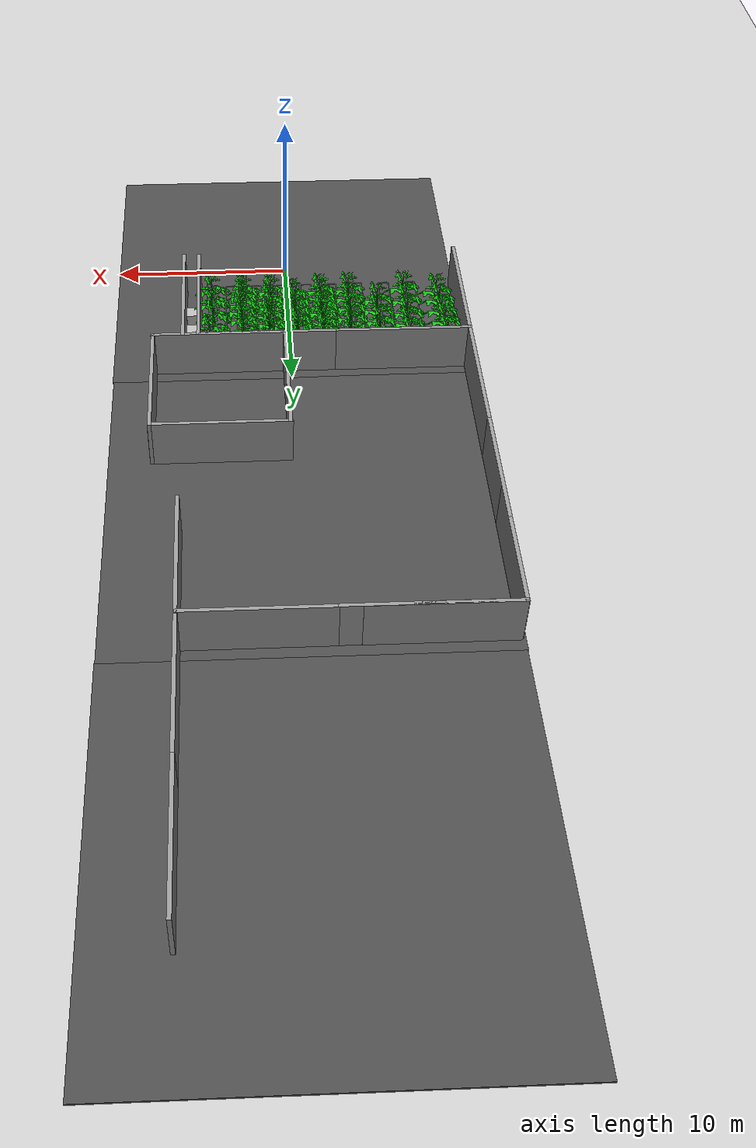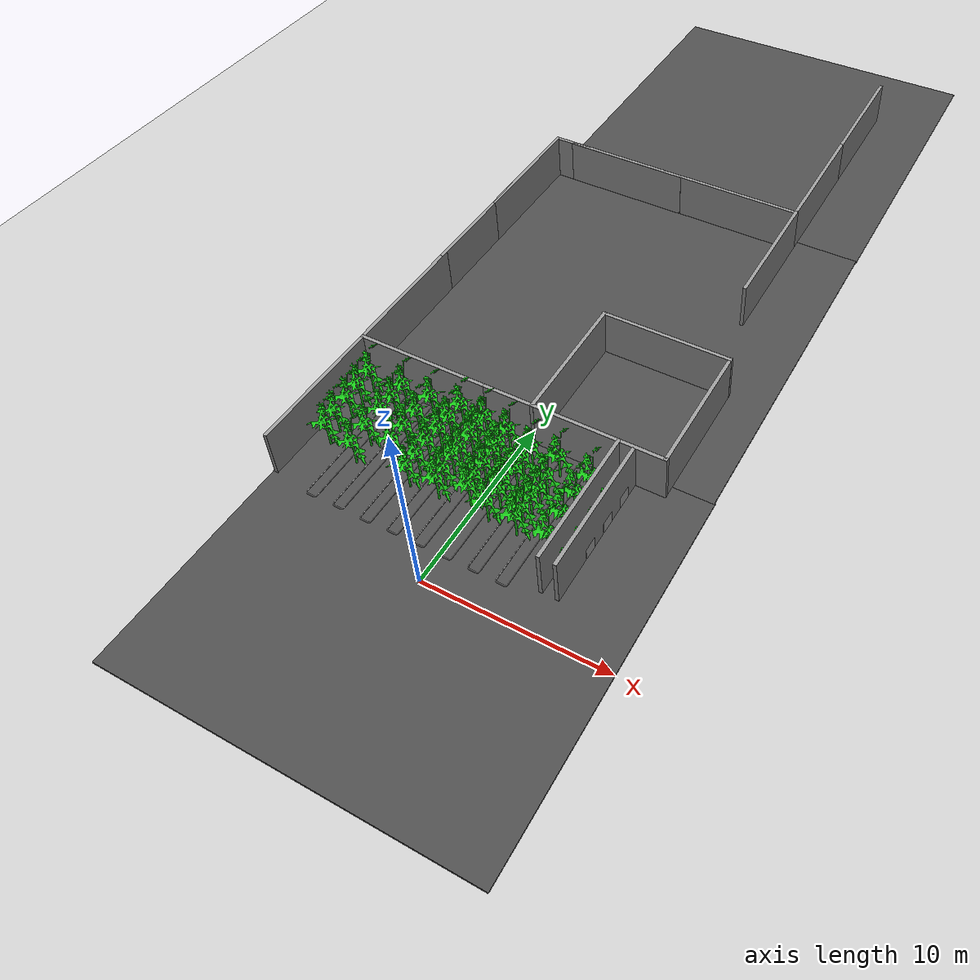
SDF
<sdf version="1.7">
 <world name="default">
  <model name="ground_plane">
   <static>1</static>
   <link name="link">
    <collision name="collision">
     <geometry><plane><normal>0 0 1</normal><size>100 100</size></plane></geometry>
     <surface><friction><ode><mu>100</mu><mu2>50</mu2></ode></friction></surface>
    </collision>
    <visual name="visual">
     <cast_shadows>0</cast_shadows>
     <geometry><plane><normal>0 0 1</normal><size>100 100</size></plane></geometry>
     <material>
      <script><uri>file://media/materials/scripts/gazebo.material</uri><name>Gazebo/Grey</name></script>
     </material>
    </visual>
   </link>
  </model>
  <model name="piperail_clone">
   <static>1</static>
   <link name="link">
    <collision name="collision">
     <geometry>
      <mesh><scale>0.001 0.001 0.001</scale><uri>model://piperail/meshes/piperail.STL</uri></mesh>
     </geometry>
    </collision>
    <visual name="visual">
     <geometry>
      <mesh><scale>0.001 0.001 0.001</scale><uri>model://piperail/meshes/piperail.STL</uri></mesh>
     </geometry>
    </visual>
   </link>
   <pose>-0.016211 9 0.05 1.57 -0 0</pose>
  </model>
  <model name="piperail_clone_4">
   <static>1</static>
   <link name="link">
    <collision name="collision">
     <geometry>
      <mesh><scale>0.001 0.001 0.001</scale><uri>model://piperail/meshes/piperail.STL</uri></mesh>
     </geometry>
    </collision>
    <visual name="visual">
     <geometry>
      <mesh><scale>0.001 0.001 0.001</scale><uri>model://piperail/meshes/piperail.STL</uri></mesh>
     </geometry>
    </visual>
   </link>
   <pose>-1.5 9 0.05 1.57 -0 0</pose>
  </model>
  <model name="piperail_clone_5">
   <static>1</static>
   <link name="link">
    <collision name="collision">
     <geometry>
      <mesh><scale>0.001 0.001 0.001</scale><uri>model://piperail/meshes/piperail.STL</uri></mesh>
     </geometry>
    </collision>
    <visual name="visual">
     <geometry>
      <mesh><scale>0.001 0.001 0.001</scale><uri>model://piperail/meshes/piperail.STL</uri></mesh>
     </geometry>
    </visual>
   </link>
   <pose>-3 9 0.05 1.57 -0 0</pose>
  </model>
  <model name="piperail_clone_6">
   <static>1</static>
   <link name="link">
    <collision name="collision">
     <geometry>
      <mesh><scale>0.001 0.001 0.001</scale><uri>model://piperail/meshes/piperail.STL</uri></mesh>
     </geometry>
    </collision>
    <visual name="visual">
     <geometry>
      <mesh><scale>0.001 0.001 0.001</scale><uri>model://piperail/meshes/piperail.STL</uri></mesh>
     </geometry>
    </visual>
   </link>
   <pose>1.5 9 0.05 1.57 -0 0</pose>
  </model>
  <model name="piperail_clone_7">
   <static>1</static>
   <link name="link">
    <collision name="collision">
     <geometry>
      <mesh><scale>0.001 0.001 0.001</scale><uri>model://piperail/meshes/piperail.STL</uri></mesh>
     </geometry>
    </collision>
    <visual name="visual">
     <geometry>
      <mesh><scale>0.001 0.001 0.001</scale><uri>model://piperail/meshes/piperail.STL</uri></mesh>
     </geometry>
    </visual>
   </link>
   <pose>3 9 0.05 1.57 -0 0</pose>
  </model>
  <model name="plant_clone_1_clone_5">
   <static>1</static>
   <link name="link">
    <visual name="visual">
     <geometry><mesh><scale>0.01 0.01 0.01</scale><uri>model://plant/meshes/plant.STL</uri></mesh></geometry>
     <material>
      <ambient>0.1 0.8 0.1 1</ambient>
      <diffuse>0.1 0.8 0.1 1</diffuse>
      <specular>0.01 0.01 0.01 1</specular>
      <emissive>0 0 0 1</emissive>
     </material>
    </visual>
   </link>
   <pose>-2.86965 5.0816 0.000845 1.57 -0 0</pose>
  </model>
  <model name="plant_clone_1_clone_8">
   <static>1</static>
   <link name="link">
    <visual name="visual">
     <geometry><mesh><scale>0.01 0.01 0.01</scale><uri>model://plant/meshes/plant.STL</uri></mesh></geometry>
     <material>
      <ambient>0.1 0.8 0.1 1</ambient>
      <diffuse>0.1 0.8 0.1 1</diffuse>
      <specular>0.01 0.01 0.01 1</specular>
      <emissive>0 0 0 1</emissive>
     </material>
    </visual>
   </link>
   <pose>1.55643 4.99352 0.000845 1.57 -0 0</pose>
  </model>
  <model name="plant_clone_1_clone_21">
   <static>1</static>
   <link name="link">
    <visual name="visual">
     <geometry><mesh><scale>0.01 0.01 0.01</scale><uri>model://plant/meshes/plant.STL</uri></mesh></geometry>
     <material>
      <ambient>0.1 0.8 0.1 1</ambient>
      <diffuse>0.1 0.8 0.1 1</diffuse>
      <specular>0.01 0.01 0.01 1</specular>
      <emissive>0 0 0 1</emissive>
     </material>
    </visual>
   </link>
   <pose>3.36217 4.88797 0.000845 1.57 -0 0</pose>
  </model>
  <model name="grey_wall_clone">
   <static>1</static>
   <link name="link">
    <pose>0 0 1.4 0 -0 0</pose>
    <collision name="collision"><geometry><box><size>7.5 0.2 2.8</size></box></geometry></collision>
    <visual name="visual">
     <cast_shadows>0</cast_shadows>
     <geometry><box><size>7.5 0.2 2.8</size></box></geometry>
     <material>
      <script>
       <uri>model://grey_wall/materials/scripts</uri>
       <uri>model://grey_wall/materials/textures</uri>
       <name>vrc/grey_wall</name>
      </script>
     </material>
    </visual>
   </link>
   <pose>6 5.75 0 0 -0 1.57</pose>
  </model>
  <model name="number1">
   <pose>5.71 8.13 0.4 0 -0 0</pose>
   <static>1</static>
   <link name="link">
    <visual name="visual">
     <geometry><mesh><uri>model://number1/meshes/number.dae</uri></mesh></geometry>
     <material>
      <script>
       <uri>model://number1/materials/scripts</uri>
       <uri>model://number1/materials/textures</uri>
       <name>Number/One</name>
      </script>
     </material>
    </visual>
   </link>
  </model>
  <model name="number2">
   <pose>5.71 6.5 0.4 0 -0 0</pose>
   <static>1</static>
   <link name="link">
    <visual name="visual">
     <geometry><mesh><uri>model://number1/meshes/number.dae</uri></mesh></geometry>
     <material>
      <script>
       <uri>model://number2/materials/scripts</uri>
       <uri>model://number2/materials/textures</uri>
       <name>Number/Two</name>
      </script>
     </material>
    </visual>
   </link>
  </model>
  <model name="number3">
   <pose>5.71 4.87 0.4 0 -0 0</pose>
   <static>1</static>
   <link name="link">
    <visual name="visual">
     <geometry><mesh><uri>model://number1/meshes/number.dae</uri></mesh></geometry>
     <material>
      <script>
       <uri>model://number3/materials/scripts</uri>
       <uri>model://number3/materials/textures</uri>
       <name>Number/Three</name>
      </script>
     </material>
    </visual>
   </link>
  </model>
  <model name="grey_wall_clone_clone_2">
   <static>1</static>
   <link name="link">
    <pose>0 0 1.4 0 -0 0</pose>
    <collision name="collision"><geometry><box><size>7.5 0.2 2.8</size></box></geometry></collision>
    <visual name="visual">
     <cast_shadows>0</cast_shadows>
     <geometry><box><size>7.5 0.2 2.8</size></box></geometry>
     <material>
      <script>
       <uri>model://grey_wall/materials/scripts</uri>
       <uri>model://grey_wall/materials/textures</uri>
       <name>vrc/grey_wall</name>
      </script>
     </material>
    </visual>
   </link>
   <pose>5.14176 5.75828 0 0 -0 1.57</pose>
  </model>
  <model name="asphalt_plane">
   <static>1</static>
   <link name="link">
    <collision name="collision"><geometry><box><size>20 20 0.1</size></box></geometry></collision>
    <visual name="visual">
     <cast_shadows>0</cast_shadows>
     <geometry><box><size>20 20 0.1</size></box></geometry>
     <material>
      <script>
       <uri>model://asphalt_plane/materials/scripts</uri>
       <uri>model://asphalt_plane/materials/textures</uri>
       <name>vrc/asphalt</name>
      </script>
     </material>
    </visual>
   </link>
   <pose>0.007662 0.157905 0 0 -0 0</pose>
  </model>
  <model name="asphalt_plane_clone">
   <static>1</static>
   <link name="link">
    <collision name="collision"><geometry><box><size>20 20 0.1</size></box></geometry></collision>
    <visual name="visual">
     <cast_shadows>0</cast_shadows>
     <geometry><box><size>20 20 0.1</size></box></geometry>
     <material>
      <script>
       <uri>model://asphalt_plane/materials/scripts</uri>
       <uri>model://asphalt_plane/materials/textures</uri>
       <name>vrc/asphalt</name>
      </script>
     </material>
    </visual>
   </link>
   <pose>-0.039502 20.0509 0 0 -0 0</pose>
  </model>
  <model name="plant_clone_0_clone_16">
   <static>1</static>
   <link name="link">
    <visual name="visual">
     <geometry><mesh><scale>0.01 0.01 0.01</scale><uri>model://plant/meshes/plant.STL</uri></mesh></geometry>
     <material>
      <ambient>0.1 0.8 0.1 1</ambient>
      <diffuse>0.1 0.8 0.1 1</diffuse>
      <specular>0.01 0.01 0.01 1</specular>
      <emissive>0 0 0 1</emissive>
     </material>
    </visual>
   </link>
   <pose>3.36601 6.18706 0.004669 1.57 -0 0</pose>
  </model>
  <model name="plant_clone_0_clone_17">
   <static>1</static>
   <link name="link">
    <visual name="visual">
     <geometry><mesh><scale>0.01 0.01 0.01</scale><uri>model://plant/meshes/plant.STL</uri></mesh></geometry>
     <material>
      <ambient>0.1 0.8 0.1 1</ambient>
      <diffuse>0.1 0.8 0.1 1</diffuse>
      <specular>0.01 0.01 0.01 1</specular>
      <emissive>0 0 0 1</emissive>
     </material>
    </visual>
   </link>
   <pose>3.29254 7.47024 0.004669 1.57 -0 0</pose>
  </model>
  <model name="plant_clone_0_clone_18">
   <static>1</static>
   <link name="link">
    <visual name="visual">
     <geometry><mesh><scale>0.01 0.01 0.01</scale><uri>model://plant/meshes/plant.STL</uri></mesh></geometry>
     <material>
      <ambient>0.1 0.8 0.1 1</ambient>
      <diffuse>0.1 0.8 0.1 1</diffuse>
      <specular>0.01 0.01 0.01 1</specular>
      <emissive>0 0 0 1</emissive>
     </material>
    </visual>
   </link>
   <pose>3.50736 8.64933 0.004669 1.57 -0 0</pose>
  </model>
  <model name="plant_clone_0_clone_19">
   <static>1</static>
   <link name="link">
    <visual name="visual">
     <geometry><mesh><scale>0.01 0.01 0.01</scale><uri>model://plant/meshes/plant.STL</uri></mesh></geometry>
     <material>
      <ambient>0.1 0.8 0.1 1</ambient>
      <diffuse>0.1 0.8 0.1 1</diffuse>
      <specular>0.01 0.01 0.01 1</specular>
      <emissive>0 0 0 1</emissive>
     </material>
    </visual>
   </link>
   <pose>1.63352 6.24068 0.004669 1.57 -0 0</pose>
  </model>
  <model name="plant_clone_0_clone_20">
   <static>1</static>
   <link name="link">
    <visual name="visual">
     <geometry><mesh><scale>0.01 0.01 0.01</scale><uri>model://plant/meshes/plant.STL</uri></mesh></geometry>
     <material>
      <ambient>0.1 0.8 0.1 1</ambient>
      <diffuse>0.1 0.8 0.1 1</diffuse>
      <specular>0.01 0.01 0.01 1</specular>
      <emissive>0 0 0 1</emissive>
     </material>
    </visual>
   </link>
   <pose>1.64295 7.69018 0.004669 1.57 -0 0</pose>
  </model>
  <model name="plant_clone_0_clone_21">
   <static>1</static>
   <link name="link">
    <visual name="visual">
     <geometry><mesh><scale>0.01 0.01 0.01</scale><uri>model://plant/meshes/plant.STL</uri></mesh></geometry>
     <material>
      <ambient>0.1 0.8 0.1 1</ambient>
      <diffuse>0.1 0.8 0.1 1</diffuse>
      <specular>0.01 0.01 0.01 1</specular>
      <emissive>0 0 0 1</emissive>
     </material>
    </visual>
   </link>
   <pose>1.59191 8.93783 0.004669 1.57 -0 0</pose>
  </model>
  <model name="plant_clone_0_clone_22">
   <static>1</static>
   <link name="link">
    <visual name="visual">
     <geometry><mesh><scale>0.01 0.01 0.01</scale><uri>model://plant/meshes/plant.STL</uri></mesh></geometry>
     <material>
      <ambient>0.1 0.8 0.1 1</ambient>
      <diffuse>0.1 0.8 0.1 1</diffuse>
      <specular>0.01 0.01 0.01 1</specular>
      <emissive>0 0 0 1</emissive>
     </material>
    </visual>
   </link>
   <pose>0.080267 5.92954 0.004669 1.57 -0 0</pose>
  </model>
  <model name="plant_clone_0_clone_23">
   <static>1</static>
   <link name="link">
    <visual name="visual">
     <geometry><mesh><scale>0.01 0.01 0.01</scale><uri>model://plant/meshes/plant.STL</uri></mesh></geometry>
     <material>
      <ambient>0.1 0.8 0.1 1</ambient>
      <diffuse>0.1 0.8 0.1 1</diffuse>
      <specular>0.01 0.01 0.01 1</specular>
      <emissive>0 0 0 1</emissive>
     </material>
    </visual>
   </link>
   <pose>0.160524 7.32892 0.004669 1.57 -0 0</pose>
  </model>
  <model name="plant_clone_0_clone_24">
   <static>1</static>
   <link name="link">
    <visual name="visual">
     <geometry><mesh><scale>0.01 0.01 0.01</scale><uri>model://plant/meshes/plant.STL</uri></mesh></geometry>
     <material>
      <ambient>0.1 0.8 0.1 1</ambient>
      <diffuse>0.1 0.8 0.1 1</diffuse>
      <specular>0.01 0.01 0.01 1</specular>
      <emissive>0 0 0 1</emissive>
     </material>
    </visual>
   </link>
   <pose>0.128203 8.80605 0.004669 1.57 -0 0</pose>
  </model>
  <model name="plant_clone_0_clone_25">
   <static>1</static>
   <link name="link">
    <visual name="visual">
     <geometry><mesh><scale>0.01 0.01 0.01</scale><uri>model://plant/meshes/plant.STL</uri></mesh></geometry>
     <material>
      <ambient>0.1 0.8 0.1 1</ambient>
      <diffuse>0.1 0.8 0.1 1</diffuse>
      <specular>0.01 0.01 0.01 1</specular>
      <emissive>0 0 0 1</emissive>
     </material>
    </visual>
   </link>
   <pose>-1.40791 6.12978 0.004669 1.57 -0 0</pose>
  </model>
  <model name="plant_clone_0_clone_26">
   <static>1</static>
   <link name="link">
    <visual name="visual">
     <geometry><mesh><scale>0.01 0.01 0.01</scale><uri>model://plant/meshes/plant.STL</uri></mesh></geometry>
     <material>
      <ambient>0.1 0.8 0.1 1</ambient>
      <diffuse>0.1 0.8 0.1 1</diffuse>
      <specular>0.01 0.01 0.01 1</specular>
      <emissive>0 0 0 1</emissive>
     </material>
    </visual>
   </link>
   <pose>-1.37882 7.75159 0.004669 1.57 -0 0</pose>
  </model>
  <model name="plant_clone_0_clone_27">
   <static>1</static>
   <link name="link">
    <visual name="visual">
     <geometry><mesh><scale>0.01 0.01 0.01</scale><uri>model://plant/meshes/plant.STL</uri></mesh></geometry>
     <material>
      <ambient>0.1 0.8 0.1 1</ambient>
      <diffuse>0.1 0.8 0.1 1</diffuse>
      <specular>0.01 0.01 0.01 1</specular>
      <emissive>0 0 0 1</emissive>
     </material>
    </visual>
   </link>
   <pose>-1.44426 9.24249 0.004669 1.57 -0 0</pose>
  </model>
  <model name="plant_clone_0_clone_28">
   <static>1</static>
   <link name="link">
    <visual name="visual">
     <geometry><mesh><scale>0.01 0.01 0.01</scale><uri>model://plant/meshes/plant.STL</uri></mesh></geometry>
     <material>
      <ambient>0.1 0.8 0.1 1</ambient>
      <diffuse>0.1 0.8 0.1 1</diffuse>
      <specular>0.01 0.01 0.01 1</specular>
      <emissive>0 0 0 1</emissive>
     </material>
    </visual>
   </link>
   <pose>-2.99292 6.60256 0.004669 1.57 -0 0</pose>
  </model>
  <model name="plant_clone_0_clone_29">
   <static>1</static>
   <link name="link">
    <visual name="visual">
     <geometry><mesh><scale>0.01 0.01 0.01</scale><uri>model://plant/meshes/plant.STL</uri></mesh></geometry>
     <material>
      <ambient>0.1 0.8 0.1 1</ambient>
      <diffuse>0.1 0.8 0.1 1</diffuse>
      <specular>0.01 0.01 0.01 1</specular>
      <emissive>0 0 0 1</emissive>
     </material>
    </visual>
   </link>
   <pose>-2.82416 8.02474 0.004669 1.57 -0 0</pose>
  </model>
  <model name="plant_clone_0_clone_30">
   <static>1</static>
   <link name="link">
    <visual name="visual">
     <geometry><mesh><scale>0.01 0.01 0.01</scale><uri>model://plant/meshes/plant.STL</uri></mesh></geometry>
     <material>
      <ambient>0.1 0.8 0.1 1</ambient>
      <diffuse>0.1 0.8 0.1 1</diffuse>
      <specular>0.01 0.01 0.01 1</specular>
      <emissive>0 0 0 1</emissive>
     </material>
    </visual>
   </link>
   <pose>-2.91935 9.43247 0.004669 1.57 -0 0</pose>
  </model>
  <model name="piperail_clone_5_clone">
   <static>1</static>
   <link name="link">
    <collision name="collision">
     <geometry>
      <mesh><scale>0.001 0.001 0.001</scale><uri>model://piperail/meshes/piperail.STL</uri></mesh>
     </geometry>
    </collision>
    <visual name="visual">
     <geometry>
      <mesh><scale>0.001 0.001 0.001</scale><uri>model://piperail/meshes/piperail.STL</uri></mesh>
     </geometry>
    </visual>
   </link>
   <pose>-4.53735 8.94784 0.05 1.57 -0 0</pose>
  </model>
  <model name="plant_clone_0_clone_30_clone_1">
   <static>1</static>
   <link name="link">
    <visual name="visual">
     <geometry><mesh><scale>0.01 0.01 0.01</scale><uri>model://plant/meshes/plant.STL</uri></mesh></geometry>
     <material>
      <ambient>0.1 0.8 0.1 1</ambient>
      <diffuse>0.1 0.8 0.1 1</diffuse>
      <specular>0.01 0.01 0.01 1</specular>
      <emissive>0 0 0 1</emissive>
     </material>
    </visual>
   </link>
   <pose>-4.52024 5.02382 0.004669 1.57 -0 0</pose>
  </model>
  <model name="plant_clone_0_clone_30_clone_2">
   <static>1</static>
   <link name="link">
    <visual name="visual">
     <geometry><mesh><scale>0.01 0.01 0.01</scale><uri>model://plant/meshes/plant.STL</uri></mesh></geometry>
     <material>
      <ambient>0.1 0.8 0.1 1</ambient>
      <diffuse>0.1 0.8 0.1 1</diffuse>
      <specular>0.01 0.01 0.01 1</specular>
      <emissive>0 0 0 1</emissive>
     </material>
    </visual>
   </link>
   <pose>-4.50068 5.85121 0.004669 1.57 -0 0</pose>
  </model>
  <model name="plant_clone_0_clone_30_clone_3">
   <static>1</static>
   <link name="link">
    <visual name="visual">
     <geometry><mesh><scale>0.01 0.01 0.01</scale><uri>model://plant/meshes/plant.STL</uri></mesh></geometry>
     <material>
      <ambient>0.1 0.8 0.1 1</ambient>
      <diffuse>0.1 0.8 0.1 1</diffuse>
      <specular>0.01 0.01 0.01 1</specular>
      <emissive>0 0 0 1</emissive>
     </material>
    </visual>
   </link>
   <pose>-4.54195 6.77755 0.004669 1.57 -0 0</pose>
  </model>
  <model name="plant_clone_0_clone_30_clone_4">
   <static>1</static>
   <link name="link">
    <visual name="visual">
     <geometry><mesh><scale>0.01 0.01 0.01</scale><uri>model://plant/meshes/plant.STL</uri></mesh></geometry>
     <material>
      <ambient>0.1 0.8 0.1 1</ambient>
      <diffuse>0.1 0.8 0.1 1</diffuse>
      <specular>0.01 0.01 0.01 1</specular>
      <emissive>0 0 0 1</emissive>
     </material>
    </visual>
   </link>
   <pose>-4.46988 7.69147 0.004669 1.57 -0 0</pose>
  </model>
  <model name="plant_clone_0_clone_30_clone_5">
   <static>1</static>
   <link name="link">
    <visual name="visual">
     <geometry><mesh><scale>0.01 0.01 0.01</scale><uri>model://plant/meshes/plant.STL</uri></mesh></geometry>
     <material>
      <ambient>0.1 0.8 0.1 1</ambient>
      <diffuse>0.1 0.8 0.1 1</diffuse>
      <specular>0.01 0.01 0.01 1</specular>
      <emissive>0 0 0 1</emissive>
     </material>
    </visual>
   </link>
   <pose>-4.47207 8.53711 0.004669 1.57 -0 0</pose>
  </model>
  <model name="plant_clone_0_clone_30_clone_6">
   <static>1</static>
   <link name="link">
    <visual name="visual">
     <geometry><mesh><scale>0.01 0.01 0.01</scale><uri>model://plant/meshes/plant.STL</uri></mesh></geometry>
     <material>
      <ambient>0.1 0.8 0.1 1</ambient>
      <diffuse>0.1 0.8 0.1 1</diffuse>
      <specular>0.01 0.01 0.01 1</specular>
      <emissive>0 0 0 1</emissive>
     </material>
    </visual>
   </link>
   <pose>-4.38828 9.49937 0.004669 1.57 -0 0</pose>
  </model>
  <model name="plant_clone_0_clone_30_clone_10">
   <static>1</static>
   <link name="link">
    <visual name="visual">
     <geometry><mesh><scale>0.01 0.01 0.01</scale><uri>model://plant/meshes/plant.STL</uri></mesh></geometry>
     <material>
      <ambient>0.1 0.8 0.1 1</ambient>
      <diffuse>0.1 0.8 0.1 1</diffuse>
      <specular>0.01 0.01 0.01 1</specular>
      <emissive>0 0 0 1</emissive>
     </material>
    </visual>
   </link>
   <pose>-6.12379 6.0806 0.004669 1.57 -0 0</pose>
  </model>
  <model name="plant_clone_0_clone_30_clone_11">
   <static>1</static>
   <link name="link">
    <visual name="visual">
     <geometry><mesh><scale>0.01 0.01 0.01</scale><uri>model://plant/meshes/plant.STL</uri></mesh></geometry>
     <material>
      <ambient>0.1 0.8 0.1 1</ambient>
      <diffuse>0.1 0.8 0.1 1</diffuse>
      <specular>0.01 0.01 0.01 1</specular>
      <emissive>0 0 0 1</emissive>
     </material>
    </visual>
   </link>
   <pose>-6.03971 7.04545 0.004669 1.57 -0 0</pose>
  </model>
  <model name="plant_clone_0_clone_30_clone_12">
   <static>1</static>
   <link name="link">
    <visual name="visual">
     <geometry><mesh><scale>0.01 0.01 0.01</scale><uri>model://plant/meshes/plant.STL</uri></mesh></geometry>
     <material>
      <ambient>0.1 0.8 0.1 1</ambient>
      <diffuse>0.1 0.8 0.1 1</diffuse>
      <specular>0.01 0.01 0.01 1</specular>
      <emissive>0 0 0 1</emissive>
     </material>
    </visual>
   </link>
   <pose>-6.10731 8.10892 0.004669 1.57 -0 0</pose>
  </model>
  <model name="plant_clone_0_clone_30_clone_13">
   <static>1</static>
   <link name="link">
    <visual name="visual">
     <geometry><mesh><scale>0.01 0.01 0.01</scale><uri>model://plant/meshes/plant.STL</uri></mesh></geometry>
     <material>
      <ambient>0.1 0.8 0.1 1</ambient>
      <diffuse>0.1 0.8 0.1 1</diffuse>
      <specular>0.01 0.01 0.01 1</specular>
      <emissive>0 0 0 1</emissive>
     </material>
    </visual>
   </link>
   <pose>-6.02208 9.23883 0.004669 1.57 -0 0</pose>
  </model>
  <model name="piperail_clone_5_clone_clone">
   <static>1</static>
   <link name="link">
    <collision name="collision">
     <geometry>
      <mesh><scale>0.001 0.001 0.001</scale><uri>model://piperail/meshes/piperail.STL</uri></mesh>
     </geometry>
    </collision>
    <visual name="visual">
     <geometry>
      <mesh><scale>0.001 0.001 0.001</scale><uri>model://piperail/meshes/piperail.STL</uri></mesh>
     </geometry>
    </visual>
   </link>
   <pose>-6.16108 8.98413 0.05 1.57 -0 0</pose>
  </model>
  <model name="plant_clone_0_clone_30_clone_13_clone_1">
   <static>1</static>
   <link name="link">
    <visual name="visual">
     <geometry><mesh><scale>0.01 0.01 0.01</scale><uri>model://plant/meshes/plant.STL</uri></mesh></geometry>
     <material>
      <ambient>0.1 0.8 0.1 1</ambient>
      <diffuse>0.1 0.8 0.1 1</diffuse>
      <specular>0.01 0.01 0.01 1</specular>
      <emissive>0 0 0 1</emissive>
     </material>
    </visual>
   </link>
   <pose>-7.72065 5.00376 0.004669 1.57 -0 0</pose>
  </model>
  <model name="plant_clone_0_clone_30_clone_13_clone_2">
   <static>1</static>
   <link name="link">
    <visual name="visual">
     <geometry><mesh><scale>0.01 0.01 0.01</scale><uri>model://plant/meshes/plant.STL</uri></mesh></geometry>
     <material>
      <ambient>0.1 0.8 0.1 1</ambient>
      <diffuse>0.1 0.8 0.1 1</diffuse>
      <specular>0.01 0.01 0.01 1</specular>
      <emissive>0 0 0 1</emissive>
     </material>
    </visual>
   </link>
   <pose>-7.74614 6.21845 0.004669 1.57 -0 0</pose>
  </model>
  <model name="plant_clone_0_clone_30_clone_13_clone_3">
   <static>1</static>
   <link name="link">
    <visual name="visual">
     <geometry><mesh><scale>0.01 0.01 0.01</scale><uri>model://plant/meshes/plant.STL</uri></mesh></geometry>
     <material>
      <ambient>0.1 0.8 0.1 1</ambient>
      <diffuse>0.1 0.8 0.1 1</diffuse>
      <specular>0.01 0.01 0.01 1</specular>
      <emissive>0 0 0 1</emissive>
     </material>
    </visual>
   </link>
   <pose>-7.73828 7.38664 0.004669 1.57 -0 0</pose>
  </model>
  <model name="plant_clone_0_clone_30_clone_13_clone_4">
   <static>1</static>
   <link name="link">
    <visual name="visual">
     <geometry><mesh><scale>0.01 0.01 0.01</scale><uri>model://plant/meshes/plant.STL</uri></mesh></geometry>
     <material>
      <ambient>0.1 0.8 0.1 1</ambient>
      <diffuse>0.1 0.8 0.1 1</diffuse>
      <specular>0.01 0.01 0.01 1</specular>
      <emissive>0 0 0 1</emissive>
     </material>
    </visual>
   </link>
   <pose>-7.70398 8.33285 0.004669 1.57 -0 0</pose>
  </model>
  <model name="plant_clone_0_clone_30_clone_13_clone_5">
   <static>1</static>
   <link name="link">
    <visual name="visual">
     <geometry><mesh><scale>0.01 0.01 0.01</scale><uri>model://plant/meshes/plant.STL</uri></mesh></geometry>
     <material>
      <ambient>0.1 0.8 0.1 1</ambient>
      <diffuse>0.1 0.8 0.1 1</diffuse>
      <specular>0.01 0.01 0.01 1</specular>
      <emissive>0 0 0 1</emissive>
     </material>
    </visual>
   </link>
   <pose>-7.73421 9.25502 0.004669 1.57 -0 0</pose>
  </model>
  <model name="piperail_clone_5_clone_clone_clone">
   <static>1</static>
   <link name="link">
    <collision name="collision">
     <geometry>
      <mesh><scale>0.001 0.001 0.001</scale><uri>model://piperail/meshes/piperail.STL</uri></mesh>
     </geometry>
    </collision>
    <visual name="visual">
     <geometry>
      <mesh><scale>0.001 0.001 0.001</scale><uri>model://piperail/meshes/piperail.STL</uri></mesh>
     </geometry>
    </visual>
   </link>
   <pose>-7.75141 8.96285 0.05 1.57 -0 0</pose>
  </model>
  <model name="plant_clone_0_clone_30_clone_13_clone_5_clone_2">
   <static>1</static>
   <link name="link">
    <visual name="visual">
     <geometry><mesh><scale>0.01 0.01 0.01</scale><uri>model://plant/meshes/plant.STL</uri></mesh></geometry>
     <material>
      <ambient>0.1 0.8 0.1 1</ambient>
      <diffuse>0.1 0.8 0.1 1</diffuse>
      <specular>0.01 0.01 0.01 1</specular>
      <emissive>0 0 0 1</emissive>
     </material>
    </visual>
   </link>
   <pose>-9.59969 5.35152 0.004669 1.57 -0 0</pose>
  </model>
  <model name="plant_clone_0_clone_30_clone_13_clone_5_clone_3">
   <static>1</static>
   <link name="link">
    <visual name="visual">
     <geometry><mesh><scale>0.01 0.01 0.01</scale><uri>model://plant/meshes/plant.STL</uri></mesh></geometry>
     <material>
      <ambient>0.1 0.8 0.1 1</ambient>
      <diffuse>0.1 0.8 0.1 1</diffuse>
      <specular>0.01 0.01 0.01 1</specular>
      <emissive>0 0 0 1</emissive>
     </material>
    </visual>
   </link>
   <pose>-9.69247 6.2208 0.004669 1.57 -0 0</pose>
  </model>
  <model name="plant_clone_0_clone_30_clone_13_clone_5_clone_4">
   <static>1</static>
   <link name="link">
    <visual name="visual">
     <geometry><mesh><scale>0.01 0.01 0.01</scale><uri>model://plant/meshes/plant.STL</uri></mesh></geometry>
     <material>
      <ambient>0.1 0.8 0.1 1</ambient>
      <diffuse>0.1 0.8 0.1 1</diffuse>
      <specular>0.01 0.01 0.01 1</specular>
      <emissive>0 0 0 1</emissive>
     </material>
    </visual>
   </link>
   <pose>-9.69987 7.24294 0.004669 1.57 -0 0</pose>
  </model>
  <model name="plant_clone_0_clone_30_clone_13_clone_5_clone_5">
   <static>1</static>
   <link name="link">
    <visual name="visual">
     <geometry><mesh><scale>0.01 0.01 0.01</scale><uri>model://plant/meshes/plant.STL</uri></mesh></geometry>
     <material>
      <ambient>0.1 0.8 0.1 1</ambient>
      <diffuse>0.1 0.8 0.1 1</diffuse>
      <specular>0.01 0.01 0.01 1</specular>
      <emissive>0 0 0 1</emissive>
     </material>
    </visual>
   </link>
   <pose>-9.78792 8.21427 0.004669 1.57 -0 0</pose>
  </model>
  <model name="plant_clone_0_clone_30_clone_13_clone_5_clone_6">
   <static>1</static>
   <link name="link">
    <visual name="visual">
     <geometry><mesh><scale>0.01 0.01 0.01</scale><uri>model://plant/meshes/plant.STL</uri></mesh></geometry>
     <material>
      <ambient>0.1 0.8 0.1 1</ambient>
      <diffuse>0.1 0.8 0.1 1</diffuse>
      <specular>0.01 0.01 0.01 1</specular>
      <emissive>0 0 0 1</emissive>
     </material>
    </visual>
   </link>
   <pose>-9.813 9.22945 0.004669 1.57 -0 0</pose>
  </model>
  <model name="plant_clone_0_clone_30_clone_13_clone_5_clone_7">
   <static>1</static>
   <link name="link">
    <visual name="visual">
     <geometry><mesh><scale>0.01 0.01 0.01</scale><uri>model://plant/meshes/plant.STL</uri></mesh></geometry>
     <material>
      <ambient>0.1 0.8 0.1 1</ambient>
      <diffuse>0.1 0.8 0.1 1</diffuse>
      <specular>0.01 0.01 0.01 1</specular>
      <emissive>0 0 0 1</emissive>
     </material>
    </visual>
   </link>
   <pose>-0.044198 5.06564 0.004669 1.57 -0 0</pose>
  </model>
  <model name="plant_clone_0_clone_30_clone_13_clone_5_clone_8">
   <static>1</static>
   <link name="link">
    <visual name="visual">
     <geometry><mesh><scale>0.01 0.01 0.01</scale><uri>model://plant/meshes/plant.STL</uri></mesh></geometry>
     <material>
      <ambient>0.1 0.8 0.1 1</ambient>
      <diffuse>0.1 0.8 0.1 1</diffuse>
      <specular>0.01 0.01 0.01 1</specular>
      <emissive>0 0 0 1</emissive>
     </material>
    </visual>
   </link>
   <pose>-1.26673 5.4272 0.004669 1.57 -0 0</pose>
  </model>
  <model name="plant_clone_0_clone_30_clone_13_clone_5_clone_9">
   <static>1</static>
   <link name="link">
    <visual name="visual">
     <geometry><mesh><scale>0.01 0.01 0.01</scale><uri>model://plant/meshes/plant.STL</uri></mesh></geometry>
     <material>
      <ambient>0.1 0.8 0.1 1</ambient>
      <diffuse>0.1 0.8 0.1 1</diffuse>
      <specular>0.01 0.01 0.01 1</specular>
      <emissive>0 0 0 1</emissive>
     </material>
    </visual>
   </link>
   <pose>0.063207 8.0849 0.004669 1.57 -0 0</pose>
  </model>
  <model name="plant_clone_0_clone_30_clone_13_clone_5_clone_10">
   <static>1</static>
   <link name="link">
    <visual name="visual">
     <geometry><mesh><scale>0.01 0.01 0.01</scale><uri>model://plant/meshes/plant.STL</uri></mesh></geometry>
     <material>
      <ambient>0.1 0.8 0.1 1</ambient>
      <diffuse>0.1 0.8 0.1 1</diffuse>
      <specular>0.01 0.01 0.01 1</specular>
      <emissive>0 0 0 1</emissive>
     </material>
    </visual>
   </link>
   <pose>-0.055989 6.55276 0.004669 1.57 -0 0</pose>
  </model>
  <model name="plant_clone_0_clone_30_clone_13_clone_5_clone_11">
   <static>1</static>
   <link name="link">
    <visual name="visual">
     <geometry><mesh><scale>0.01 0.01 0.01</scale><uri>model://plant/meshes/plant.STL</uri></mesh></geometry>
     <material>
      <ambient>0.1 0.8 0.1 1</ambient>
      <diffuse>0.1 0.8 0.1 1</diffuse>
      <specular>0.01 0.01 0.01 1</specular>
      <emissive>0 0 0 1</emissive>
     </material>
    </visual>
   </link>
   <pose>1.71938 6.87135 0.004669 1.57 -0 0</pose>
  </model>
  <model name="plant_clone_0_clone_30_clone_13_clone_5_clone_12">
   <static>1</static>
   <link name="link">
    <visual name="visual">
     <geometry><mesh><scale>0.01 0.01 0.01</scale><uri>model://plant/meshes/plant.STL</uri></mesh></geometry>
     <material>
      <ambient>0.1 0.8 0.1 1</ambient>
      <diffuse>0.1 0.8 0.1 1</diffuse>
      <specular>0.01 0.01 0.01 1</specular>
      <emissive>0 0 0 1</emissive>
     </material>
    </visual>
   </link>
   <pose>1.60735 5.53947 0.004669 1.57 -0 0</pose>
  </model>
  <model name="plant_clone_0_clone_30_clone_13_clone_5_clone_13">
   <static>1</static>
   <link name="link">
    <visual name="visual">
     <geometry><mesh><scale>0.01 0.01 0.01</scale><uri>model://plant/meshes/plant.STL</uri></mesh></geometry>
     <material>
      <ambient>0.1 0.8 0.1 1</ambient>
      <diffuse>0.1 0.8 0.1 1</diffuse>
      <specular>0.01 0.01 0.01 1</specular>
      <emissive>0 0 0 1</emissive>
     </material>
    </visual>
   </link>
   <pose>-2.90347 5.73839 0.004669 1.57 -0 0</pose>
  </model>
  <model name="plant_clone_0_clone_30_clone_13_clone_5_clone_14">
   <static>1</static>
   <link name="link">
    <visual name="visual">
     <geometry><mesh><scale>0.01 0.01 0.01</scale><uri>model://plant/meshes/plant.STL</uri></mesh></geometry>
     <material>
      <ambient>0.1 0.8 0.1 1</ambient>
      <diffuse>0.1 0.8 0.1 1</diffuse>
      <specular>0.01 0.01 0.01 1</specular>
      <emissive>0 0 0 1</emissive>
     </material>
    </visual>
   </link>
   <pose>-2.89443 7.16315 0.004669 1.57 -0 0</pose>
  </model>
  <model name="plant_clone_0_clone_30_clone_13_clone_5_clone_15">
   <static>1</static>
   <link name="link">
    <visual name="visual">
     <geometry><mesh><scale>0.01 0.01 0.01</scale><uri>model://plant/meshes/plant.STL</uri></mesh></geometry>
     <material>
      <ambient>0.1 0.8 0.1 1</ambient>
      <diffuse>0.1 0.8 0.1 1</diffuse>
      <specular>0.01 0.01 0.01 1</specular>
      <emissive>0 0 0 1</emissive>
     </material>
    </visual>
   </link>
   <pose>-1.36125 6.91739 0.004669 1.57 -0 0</pose>
  </model>
  <model name="plant_clone_0_clone_30_clone_13_clone_5_clone_16">
   <static>1</static>
   <link name="link">
    <visual name="visual">
     <geometry><mesh><scale>0.01 0.01 0.01</scale><uri>model://plant/meshes/plant.STL</uri></mesh></geometry>
     <material>
      <ambient>0.1 0.8 0.1 1</ambient>
      <diffuse>0.1 0.8 0.1 1</diffuse>
      <specular>0.01 0.01 0.01 1</specular>
      <emissive>0 0 0 1</emissive>
     </material>
    </visual>
   </link>
   <pose>-1.48439 8.38514 0.004669 1.57 -0 0</pose>
  </model>
  <model name="plant_clone_0_clone_30_clone_13_clone_5_clone_17">
   <static>1</static>
   <link name="link">
    <visual name="visual">
     <geometry><mesh><scale>0.01 0.01 0.01</scale><uri>model://plant/meshes/plant.STL</uri></mesh></geometry>
     <material>
      <ambient>0.1 0.8 0.1 1</ambient>
      <diffuse>0.1 0.8 0.1 1</diffuse>
      <specular>0.01 0.01 0.01 1</specular>
      <emissive>0 0 0 1</emissive>
     </material>
    </visual>
   </link>
   <pose>-2.97431 8.76281 0.004669 1.57 -0 0</pose>
  </model>
  <model name="grey_wall_clone_2">
   <static>1</static>
   <link name="link">
    <pose>0 0 1.4 0 -0 0</pose>
    <collision name="collision"><geometry><box><size>7.5 0.2 2.8</size></box></geometry></collision>
    <visual name="visual">
     <cast_shadows>0</cast_shadows>
     <geometry><box><size>7.5 0.2 2.8</size></box></geometry>
     <material>
      <script>
       <uri>model://grey_wall/materials/scripts</uri>
       <uri>model://grey_wall/materials/textures</uri>
       <name>vrc/grey_wall</name>
      </script>
     </material>
    </visual>
   </link>
   <pose>1.32228 9.40553 0 0 -0 0</pose>
  </model>
  <model name="grey_wall_clone_3">
   <static>1</static>
   <link name="link">
    <pose>0 0 1.4 0 -0 0</pose>
    <collision name="collision"><geometry><box><size>7.5 0.2 2.8</size></box></geometry></collision>
    <visual name="visual">
     <cast_shadows>0</cast_shadows>
     <geometry><box><size>7.5 0.2 2.8</size></box></geometry>
     <material>
      <script>
       <uri>model://grey_wall/materials/scripts</uri>
       <uri>model://grey_wall/materials/textures</uri>
       <name>vrc/grey_wall</name>
      </script>
     </material>
    </visual>
   </link>
   <pose>-6.16043 9.40543 0 0 -0 0</pose>
  </model>
  <model name="grey_wall_clone_clone_3">
   <static>1</static>
   <link name="link">
    <pose>0 0 1.4 0 -0 0</pose>
    <collision name="collision"><geometry><box><size>7.5 0.2 2.8</size></box></geometry></collision>
    <visual name="visual">
     <cast_shadows>0</cast_shadows>
     <geometry><box><size>7.5 0.2 2.8</size></box></geometry>
     <material>
      <script>
       <uri>model://grey_wall/materials/scripts</uri>
       <uri>model://grey_wall/materials/textures</uri>
       <name>vrc/grey_wall</name>
      </script>
     </material>
    </visual>
   </link>
   <pose>-9.80923 5.57835 0 0 -0 1.57</pose>
  </model>
  <model name="grey_wall_clone_2_clone">
   <static>1</static>
   <link name="link">
    <pose>0 0 1.4 0 -0 0</pose>
    <collision name="collision"><geometry><box><size>7.5 0.2 2.8</size></box></geometry></collision>
    <visual name="visual">
     <cast_shadows>0</cast_shadows>
     <geometry><box><size>7.5 0.2 2.8</size></box></geometry>
     <material>
      <script>
       <uri>model://grey_wall/materials/scripts</uri>
       <uri>model://grey_wall/materials/textures</uri>
       <name>vrc/grey_wall</name>
      </script>
     </material>
    </visual>
   </link>
   <pose>4 9.41232 0 0 -0 0</pose>
  </model>
  <model name="grey_wall_clone_clone_0">
   <static>1</static>
   <link name="link">
    <pose>0 0 1.4 0 -0 0</pose>
    <collision name="collision"><geometry><box><size>7.5 0.2 2.8</size></box></geometry></collision>
    <visual name="visual">
     <cast_shadows>0</cast_shadows>
     <geometry><box><size>7.5 0.2 2.8</size></box></geometry>
     <material>
      <script>
       <uri>model://grey_wall/materials/scripts</uri>
       <uri>model://grey_wall/materials/textures</uri>
       <name>vrc/grey_wall</name>
      </script>
     </material>
    </visual>
   </link>
   <pose>7.64046 13.0791 0 0 -0 1.57</pose>
  </model>
  <model name="grey_wall_clone_2_clone_clone">
   <static>1</static>
   <link name="link">
    <pose>0 0 1.4 0 -0 0</pose>
    <collision name="collision"><geometry><box><size>7.5 0.2 2.8</size></box></geometry></collision>
    <visual name="visual">
     <cast_shadows>0</cast_shadows>
     <geometry><box><size>7.5 0.2 2.8</size></box></geometry>
     <material>
      <script>
       <uri>model://grey_wall/materials/scripts</uri>
       <uri>model://grey_wall/materials/textures</uri>
       <name>vrc/grey_wall</name>
      </script>
     </material>
    </visual>
   </link>
   <pose>4 16.7158 0 0 -0 0</pose>
  </model>
  <model name="grey_wall_clone_clone_0_clone_0">
   <static>1</static>
   <link name="link">
    <pose>0 0 1.4 0 -0 0</pose>
    <collision name="collision"><geometry><box><size>7.5 0.2 2.8</size></box></geometry></collision>
    <visual name="visual">
     <cast_shadows>0</cast_shadows>
     <geometry><box><size>7.5 0.2 2.8</size></box></geometry>
     <material>
      <script>
       <uri>model://grey_wall/materials/scripts</uri>
       <uri>model://grey_wall/materials/textures</uri>
       <name>vrc/grey_wall</name>
      </script>
     </material>
    </visual>
   </link>
   <pose>0.386835 13.0469 0 0 -0 1.57</pose>
  </model>
  <model name="grey_wall_clone_clone_6_clone_0">
   <static>1</static>
   <link name="link">
    <pose>0 0 1.4 0 -0 0</pose>
    <collision name="collision"><geometry><box><size>7.5 0.2 2.8</size></box></geometry></collision>
    <visual name="visual">
     <cast_shadows>0</cast_shadows>
     <geometry><box><size>7.5 0.2 2.8</size></box></geometry>
     <material>
      <script>
       <uri>model://grey_wall/materials/scripts</uri>
       <uri>model://grey_wall/materials/textures</uri>
       <name>vrc/grey_wall</name>
      </script>
     </material>
    </visual>
   </link>
   <pose>6.14728 25.6682 0 0 -0 1.57</pose>
  </model>
  <model name="grey_wall_clone_2_clone_0">
   <static>1</static>
   <link name="link">
    <pose>0 0 1.4 0 -0 0</pose>
    <collision name="collision"><geometry><box><size>7.5 0.2 2.8</size></box></geometry></collision>
    <visual name="visual">
     <cast_shadows>0</cast_shadows>
     <geometry><box><size>7.5 0.2 2.8</size></box></geometry>
     <material>
      <script>
       <uri>model://grey_wall/materials/scripts</uri>
       <uri>model://grey_wall/materials/textures</uri>
       <name>vrc/grey_wall</name>
      </script>
     </material>
    </visual>
   </link>
   <pose>2.4673 29.2907 0 0 -0 0</pose>
  </model>
  <model name="grey_wall_clone_2_clone_1">
   <static>1</static>
   <link name="link">
    <pose>0 0 1.4 0 -0 0</pose>
    <collision name="collision"><geometry><box><size>7.5 0.2 2.8</size></box></geometry></collision>
    <visual name="visual">
     <cast_shadows>0</cast_shadows>
     <geometry><box><size>7.5 0.2 2.8</size></box></geometry>
     <material>
      <script>
       <uri>model://grey_wall/materials/scripts</uri>
       <uri>model://grey_wall/materials/textures</uri>
       <name>vrc/grey_wall</name>
      </script>
     </material>
    </visual>
   </link>
   <pose>-4.95673 29.274 0 0 -0 0</pose>
  </model>
  <model name="grey_wall_clone_clone_3_clone">
   <static>1</static>
   <link name="link">
    <pose>0 0 1.4 0 -0 0</pose>
    <collision name="collision"><geometry><box><size>7.5 0.2 2.8</size></box></geometry></collision>
    <visual name="visual">
     <cast_shadows>0</cast_shadows>
     <geometry><box><size>7.5 0.2 2.8</size></box></geometry>
     <material>
      <script>
       <uri>model://grey_wall/materials/scripts</uri>
       <uri>model://grey_wall/materials/textures</uri>
       <name>vrc/grey_wall</name>
      </script>
     </material>
    </visual>
   </link>
   <pose>-9.80578 13.1836 0 0 -0 1.57</pose>
  </model>
  <model name="grey_wall_clone_clone_3_clone_0">
   <static>1</static>
   <link name="link">
    <pose>0 0 1.4 0 -0 0</pose>
    <collision name="collision"><geometry><box><size>7.5 0.2 2.8</size></box></geometry></collision>
    <visual name="visual">
     <cast_shadows>0</cast_shadows>
     <geometry><box><size>7.5 0.2 2.8</size></box></geometry>
     <material>
      <script>
       <uri>model://grey_wall/materials/scripts</uri>
       <uri>model://grey_wall/materials/textures</uri>
       <name>vrc/grey_wall</name>
      </script>
     </material>
    </visual>
   </link>
   <pose>-9.80039 20.2944 0 0 -0 1.57</pose>
  </model>
  <model name="grey_wall_clone_clone_3_clone_1">
   <static>1</static>
   <link name="link">
    <pose>0 0 1.4 0 -0 0</pose>
    <collision name="collision"><geometry><box><size>7.5 0.2 2.8</size></box></geometry></collision>
    <visual name="visual">
     <cast_shadows>0</cast_shadows>
     <geometry><box><size>7.5 0.2 2.8</size></box></geometry>
     <material>
      <script>
       <uri>model://grey_wall/materials/scripts</uri>
       <uri>model://grey_wall/materials/textures</uri>
       <name>vrc/grey_wall</name>
      </script>
     </material>
    </visual>
   </link>
   <pose>-9.79325 25.6358 0 0 -0 1.57</pose>
  </model>
  <model name="grey_wall_clone_2_clone_1_clone">
   <static>1</static>
   <link name="link">
    <pose>0 0 1.4 0 -0 0</pose>
    <collision name="collision"><geometry><box><size>7.5 0.2 2.8</size></box></geometry></collision>
    <visual name="visual">
     <cast_shadows>0</cast_shadows>
     <geometry><box><size>7.5 0.2 2.8</size></box></geometry>
     <material>
      <script>
       <uri>model://grey_wall/materials/scripts</uri>
       <uri>model://grey_wall/materials/textures</uri>
       <name>vrc/grey_wall</name>
      </script>
     </material>
    </visual>
   </link>
   <pose>-6.11574 29.2874 0 0 -0 0</pose>
  </model>
  <model name="asphalt_plane_clone_clone_3">
   <static>1</static>
   <link name="link">
    <collision name="collision"><geometry><box><size>20 20 0.1</size></box></geometry></collision>
    <visual name="visual">
     <cast_shadows>0</cast_shadows>
     <geometry><box><size>20 20 0.1</size></box></geometry>
     <material>
      <script>
       <uri>model://asphalt_plane/materials/scripts</uri>
       <uri>model://asphalt_plane/materials/textures</uri>
       <name>vrc/asphalt</name>
      </script>
     </material>
    </visual>
   </link>
   <pose>-0.003471 39.9897 0 0 -0 0</pose>
  </model>
  <model name="grey_wall_clone_clone_6_clone_clone_clone_1">
   <static>1</static>
   <link name="link">
    <pose>0 0 1.4 0 -0 0</pose>
    <collision name="collision"><geometry><box><size>7.5 0.2 2.8</size></box></geometry></collision>
    <visual name="visual">
     <cast_shadows>0</cast_shadows>
     <geometry><box><size>7.5 0.2 2.8</size></box></geometry>
     <material>
      <script>
       <uri>model://grey_wall/materials/scripts</uri>
       <uri>model://grey_wall/materials/textures</uri>
       <name>vrc/grey_wall</name>
      </script>
     </material>
    </visual>
   </link>
   <pose>6.14812 33.1716 0 0 -0 1.57</pose>
  </model>
  <model name="grey_wall_clone_clone_6_clone_clone_clone_2">
   <static>1</static>
   <link name="link">
    <pose>0 0 1.4 0 -0 0</pose>
    <collision name="collision"><geometry><box><size>7.5 0.2 2.8</size></box></geometry></collision>
    <visual name="visual">
     <cast_shadows>0</cast_shadows>
     <geometry><box><size>7.5 0.2 2.8</size></box></geometry>
     <material>
      <script>
       <uri>model://grey_wall/materials/scripts</uri>
       <uri>model://grey_wall/materials/textures</uri>
       <name>vrc/grey_wall</name>
      </script>
     </material>
    </visual>
   </link>
   <pose>6.15167 40.6698 0 0 -0 1.57</pose>
  </model>
 </world>
</sdf>
